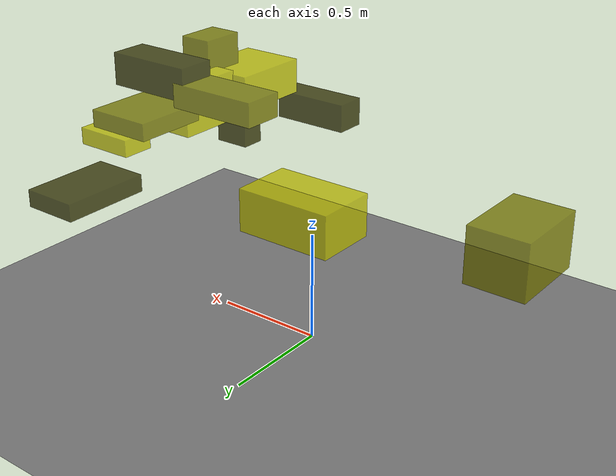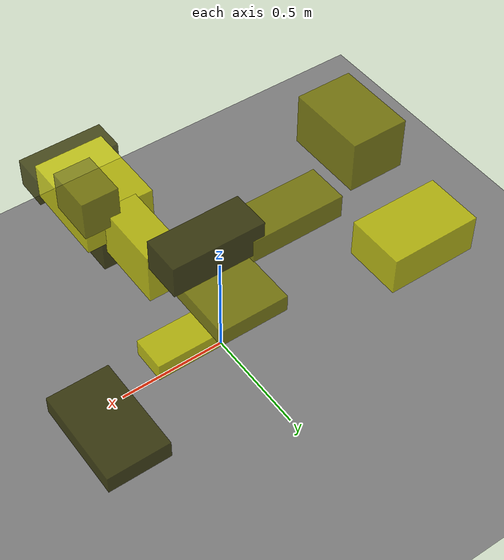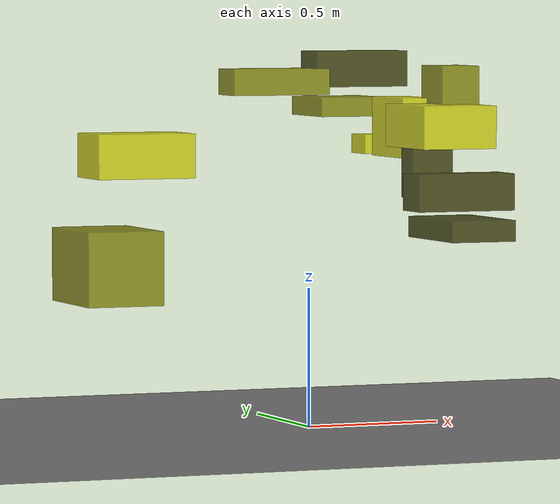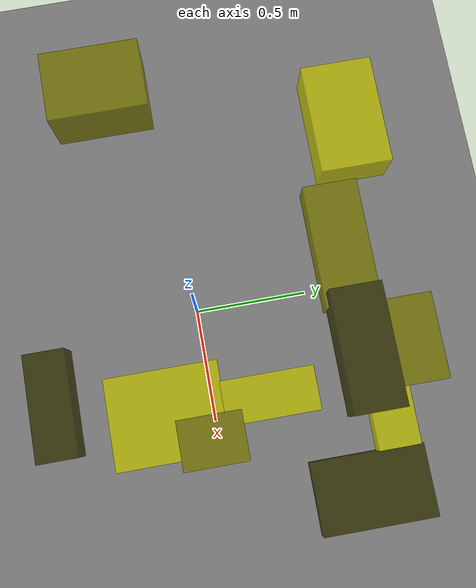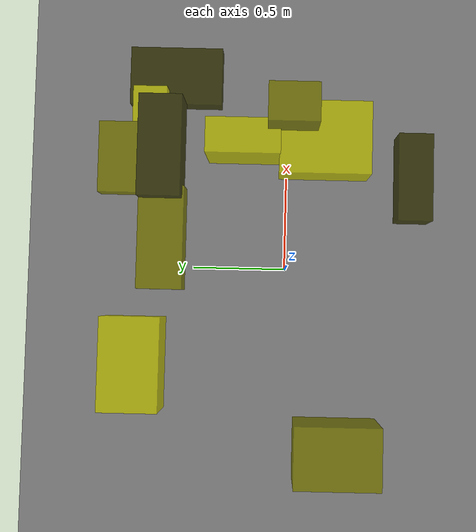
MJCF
<?xml version="1.0"?>
<mujoco model="obstacle_scene">
  <compiler angle="radian" coordinate="local"/>
  <option timestep="0.001" gravity="0 0 -9.81"/>

  <asset>
    <material name="obstacle_mat" rgba="0.8 0.8 0.0 0.8"/>
    <material name="ground_mat" rgba="0.5 0.5 0.5 1"/>
  </asset>

  <worldbody>
    <!-- Ground plane -->
    <geom name="ground" type="plane" size="3 3 0.1" material="ground_mat"/>

    <!-- Obstacles -->
    <body name="obstacle_0" pos="0.831790 0.519617 0.666143">
      <geom name="obs_0" type="box" size="0.128229 0.205373 0.039404" rgba="0.2 0.2 0.0 0.8"/>
    </body>
    <body name="obstacle_1" pos="0.054964 0.477237 1.227994">
      <geom name="obs_1" type="box" size="0.186670 0.082023 0.047962" rgba="0.5 0.5 0.0 0.8"/>
    </body>
    <body name="obstacle_2" pos="0.460305 -0.122265 1.079319">
      <geom name="obs_2" type="box" size="0.139889 0.175307 0.076558" rgba="0.8 0.8 0.0 0.8"/>
    </body>
    <body name="obstacle_3" pos="0.441879 -0.044428 0.928597">
      <geom name="obs_3" type="box" size="0.077408 0.051505 0.108637" rgba="0.2 0.2 0.0 0.8"/>
    </body>
    <body name="obstacle_4" pos="-0.848691 -0.232788 0.615602">
      <geom name="obs_4" type="box" size="0.136971 0.192813 0.128105" rgba="0.5 0.5 0.0 0.8"/>
    </body>
    <body name="obstacle_5" pos="-0.429115 0.627704 0.957653">
      <geom name="obs_5" type="box" size="0.187415 0.120019 0.081554" rgba="0.8 0.8 0.0 0.8"/>
    </body>
    <body name="obstacle_6" pos="0.357191 -0.515077 0.863395">
      <geom name="obs_6" type="box" size="0.181829 0.070798 0.064627" rgba="0.2 0.2 0.0 0.8"/>
    </body>
    <body name="obstacle_7" pos="0.553635 0.003602 1.211469">
      <geom name="obs_7" type="box" size="0.072345 0.095082 0.081663" rgba="0.5 0.5 0.0 0.8"/>
    </body>
    <body name="obstacle_8" pos="0.456088 0.192702 1.065678">
      <geom name="obs_8" type="box" size="0.067769 0.143846 0.108199" rgba="0.8 0.8 0.0 0.8"/>
    </body>
    <body name="obstacle_9" pos="0.375694 0.478787 1.273488">
      <geom name="obs_9" type="box" size="0.180696 0.076916 0.065605" rgba="0.2 0.2 0.0 0.8"/>
    </body>
    <body name="obstacle_10" pos="0.365117 0.587282 1.131449">
      <geom name="obs_10" type="box" size="0.134326 0.149398 0.034341" rgba="0.5 0.5 0.0 0.8"/>
    </body>
    <body name="obstacle_11" pos="0.558582 0.575029 0.989385">
      <geom name="obs_11" type="box" size="0.124653 0.067403 0.034923" rgba="0.8 0.8 0.0 0.8"/>
    </body>
  </worldbody>
</mujoco>
